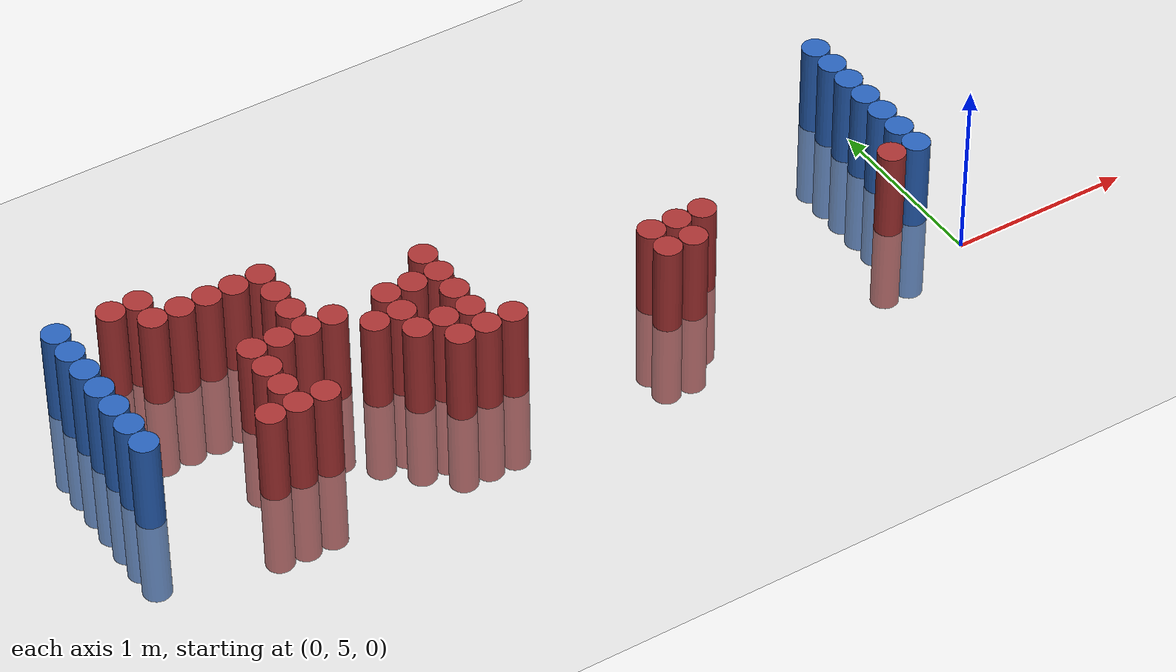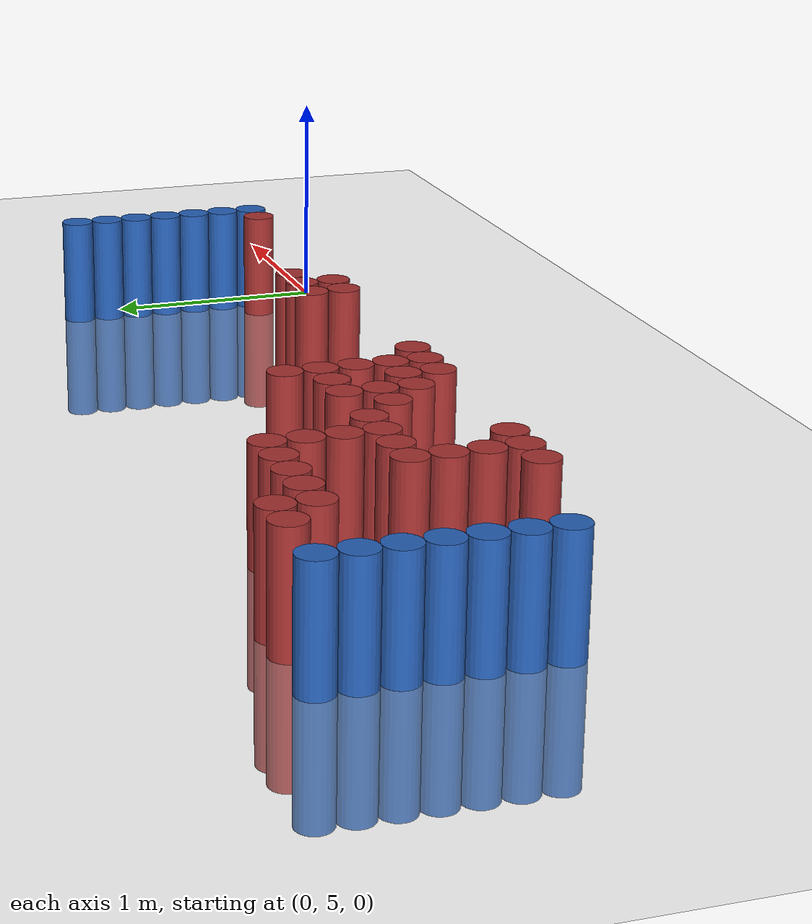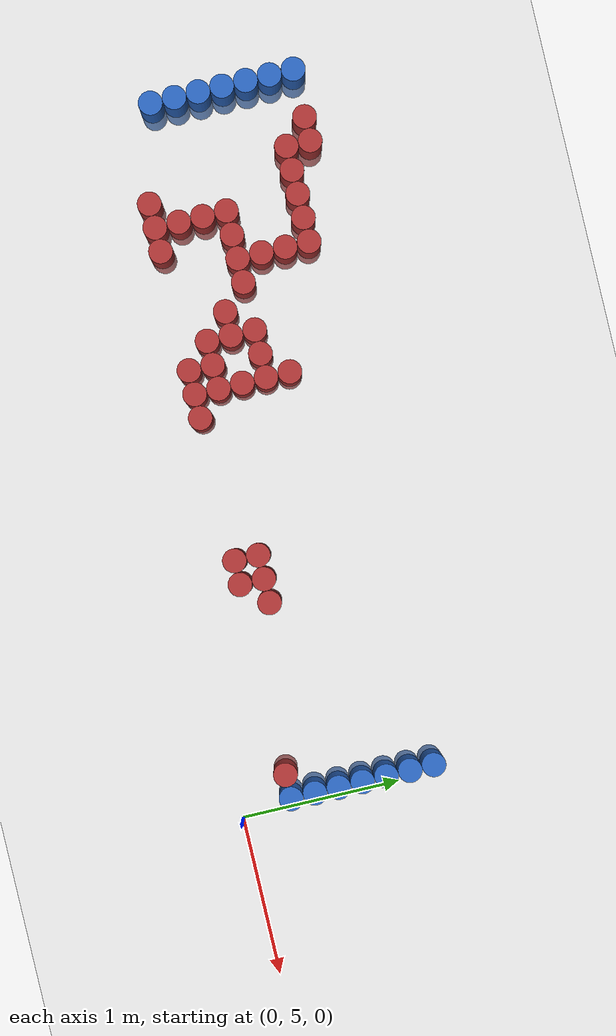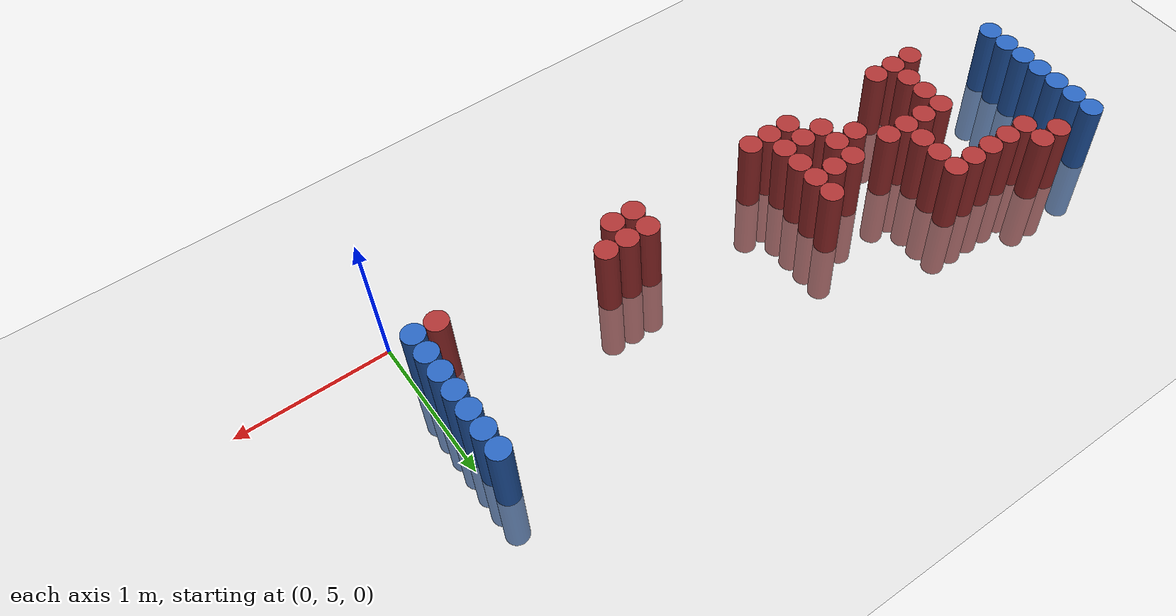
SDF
<sdf version="1.6">
 <world name="default">
  <model name="ground_plane">
   <static>1</static>
   <link name="link">
    <collision name="collision">
     <geometry><plane><normal>0 0 1</normal><size>100 100</size></plane></geometry>
     <surface><friction><ode><mu>100</mu><mu2>50</mu2></ode></friction></surface>
    </collision>
    <visual name="visual">
     <cast_shadows>0</cast_shadows>
     <geometry><plane><normal>0 0 1</normal><size>100 100</size></plane></geometry>
     <material>
      <script><uri>file://media/materials/scripts/gazebo.material</uri><name>Gazebo/Grey</name></script>
     </material>
    </visual>
   </link>
  </model>
  <model name="unit_cylinder_98">
   <static>1</static>
   <pose>-4.425000 5.475000 0.000000 0.000000 0.000000 0.000000</pose>
   <link name="link">
    <inertial>
     <mass>1</mass>
     <inertia><ixx>0.145833</ixx><ixy>0</ixy><ixz>0</ixz><iyy>0.145833</iyy><iyz>0</iyz><izz>0.125</izz></inertia>
    </inertial>
    <collision name="collision">
     <geometry><cylinder><radius>0.075000</radius><length>1</length></cylinder></geometry>
    </collision>
    <visual name="visual">
     <geometry><cylinder><radius>0.075000</radius><length>1</length></cylinder></geometry>
     <material>
      <ambient>0.152000 0.379000 0.720000 1</ambient>
      <diffuse>0.152000 0.379000 0.720000 1</diffuse>
     </material>
     <material>
      <script><name>Gazebo/Grey</name><uri>file://media/materials/scripts/gazebo.material</uri></script>
     </material>
    </visual>
   </link>
  </model>
  <model name="unit_cylinder_99">
   <static>1</static>
   <pose>-4.425000 5.625000 0.000000 0.000000 0.000000 0.000000</pose>
   <link name="link">
    <inertial>
     <mass>1</mass>
     <inertia><ixx>0.145833</ixx><ixy>0</ixy><ixz>0</ixz><iyy>0.145833</iyy><iyz>0</iyz><izz>0.125</izz></inertia>
    </inertial>
    <collision name="collision">
     <geometry><cylinder><radius>0.075000</radius><length>1</length></cylinder></geometry>
    </collision>
    <visual name="visual">
     <geometry><cylinder><radius>0.075000</radius><length>1</length></cylinder></geometry>
     <material>
      <ambient>0.152000 0.379000 0.720000 1</ambient>
      <diffuse>0.152000 0.379000 0.720000 1</diffuse>
     </material>
     <material>
      <script><name>Gazebo/Grey</name><uri>file://media/materials/scripts/gazebo.material</uri></script>
     </material>
    </visual>
   </link>
  </model>
  <model name="unit_cylinder_100">
   <static>1</static>
   <pose>-4.425000 5.775000 0.000000 0.000000 0.000000 0.000000</pose>
   <link name="link">
    <inertial>
     <mass>1</mass>
     <inertia><ixx>0.145833</ixx><ixy>0</ixy><ixz>0</ixz><iyy>0.145833</iyy><iyz>0</iyz><izz>0.125</izz></inertia>
    </inertial>
    <collision name="collision">
     <geometry><cylinder><radius>0.075000</radius><length>1</length></cylinder></geometry>
    </collision>
    <visual name="visual">
     <geometry><cylinder><radius>0.075000</radius><length>1</length></cylinder></geometry>
     <material>
      <ambient>0.152000 0.379000 0.720000 1</ambient>
      <diffuse>0.152000 0.379000 0.720000 1</diffuse>
     </material>
     <material>
      <script><name>Gazebo/Grey</name><uri>file://media/materials/scripts/gazebo.material</uri></script>
     </material>
    </visual>
   </link>
  </model>
  <model name="unit_cylinder_101">
   <static>1</static>
   <pose>-4.425000 5.925000 0.000000 0.000000 0.000000 0.000000</pose>
   <link name="link">
    <inertial>
     <mass>1</mass>
     <inertia><ixx>0.145833</ixx><ixy>0</ixy><ixz>0</ixz><iyy>0.145833</iyy><iyz>0</iyz><izz>0.125</izz></inertia>
    </inertial>
    <collision name="collision">
     <geometry><cylinder><radius>0.075000</radius><length>1</length></cylinder></geometry>
    </collision>
    <visual name="visual">
     <geometry><cylinder><radius>0.075000</radius><length>1</length></cylinder></geometry>
     <material>
      <ambient>0.152000 0.379000 0.720000 1</ambient>
      <diffuse>0.152000 0.379000 0.720000 1</diffuse>
     </material>
     <material>
      <script><name>Gazebo/Grey</name><uri>file://media/materials/scripts/gazebo.material</uri></script>
     </material>
    </visual>
   </link>
  </model>
  <model name="unit_cylinder_102">
   <static>1</static>
   <pose>-4.425000 6.075000 0.000000 0.000000 0.000000 0.000000</pose>
   <link name="link">
    <inertial>
     <mass>1</mass>
     <inertia><ixx>0.145833</ixx><ixy>0</ixy><ixz>0</ixz><iyy>0.145833</iyy><iyz>0</iyz><izz>0.125</izz></inertia>
    </inertial>
    <collision name="collision">
     <geometry><cylinder><radius>0.075000</radius><length>1</length></cylinder></geometry>
    </collision>
    <visual name="visual">
     <geometry><cylinder><radius>0.075000</radius><length>1</length></cylinder></geometry>
     <material>
      <ambient>0.152000 0.379000 0.720000 1</ambient>
      <diffuse>0.152000 0.379000 0.720000 1</diffuse>
     </material>
     <material>
      <script><name>Gazebo/Grey</name><uri>file://media/materials/scripts/gazebo.material</uri></script>
     </material>
    </visual>
   </link>
  </model>
  <model name="unit_cylinder_103">
   <static>1</static>
   <pose>-4.425000 6.225000 0.000000 0.000000 0.000000 0.000000</pose>
   <link name="link">
    <inertial>
     <mass>1</mass>
     <inertia><ixx>0.145833</ixx><ixy>0</ixy><ixz>0</ixz><iyy>0.145833</iyy><iyz>0</iyz><izz>0.125</izz></inertia>
    </inertial>
    <collision name="collision">
     <geometry><cylinder><radius>0.075000</radius><length>1</length></cylinder></geometry>
    </collision>
    <visual name="visual">
     <geometry><cylinder><radius>0.075000</radius><length>1</length></cylinder></geometry>
     <material>
      <ambient>0.152000 0.379000 0.720000 1</ambient>
      <diffuse>0.152000 0.379000 0.720000 1</diffuse>
     </material>
     <material>
      <script><name>Gazebo/Grey</name><uri>file://media/materials/scripts/gazebo.material</uri></script>
     </material>
    </visual>
   </link>
  </model>
  <model name="unit_cylinder_104">
   <static>1</static>
   <pose>-4.425000 6.375000 0.000000 0.000000 0.000000 0.000000</pose>
   <link name="link">
    <inertial>
     <mass>1</mass>
     <inertia><ixx>0.145833</ixx><ixy>0</ixy><ixz>0</ixz><iyy>0.145833</iyy><iyz>0</iyz><izz>0.125</izz></inertia>
    </inertial>
    <collision name="collision">
     <geometry><cylinder><radius>0.075000</radius><length>1</length></cylinder></geometry>
    </collision>
    <visual name="visual">
     <geometry><cylinder><radius>0.075000</radius><length>1</length></cylinder></geometry>
     <material>
      <ambient>0.152000 0.379000 0.720000 1</ambient>
      <diffuse>0.152000 0.379000 0.720000 1</diffuse>
     </material>
     <material>
      <script><name>Gazebo/Grey</name><uri>file://media/materials/scripts/gazebo.material</uri></script>
     </material>
    </visual>
   </link>
  </model>
  <model name="unit_cylinder_136">
   <static>1</static>
   <pose>-4.125000 6.375000 0.000000 0.000000 0.000000 0.000000</pose>
   <link name="link">
    <inertial>
     <mass>1</mass>
     <inertia><ixx>0.145833</ixx><ixy>0</ixy><ixz>0</ixz><iyy>0.145833</iyy><iyz>0</iyz><izz>0.125</izz></inertia>
    </inertial>
    <collision name="collision">
     <geometry><cylinder><radius>0.075000</radius><length>1</length></cylinder></geometry>
    </collision>
    <visual name="visual">
     <geometry><cylinder><radius>0.075000</radius><length>1</length></cylinder></geometry>
     <material>
      <ambient>0.648000 0.192000 0.192000 1</ambient>
      <diffuse>0.648000 0.192000 0.192000 1</diffuse>
     </material>
     <material>
      <script><name>Gazebo/Grey</name><uri>file://media/materials/scripts/gazebo.material</uri></script>
     </material>
    </visual>
   </link>
  </model>
  <model name="unit_cylinder_148">
   <static>1</static>
   <pose>-3.975000 6.225000 0.000000 0.000000 0.000000 0.000000</pose>
   <link name="link">
    <inertial>
     <mass>1</mass>
     <inertia><ixx>0.145833</ixx><ixy>0</ixy><ixz>0</ixz><iyy>0.145833</iyy><iyz>0</iyz><izz>0.125</izz></inertia>
    </inertial>
    <collision name="collision">
     <geometry><cylinder><radius>0.075000</radius><length>1</length></cylinder></geometry>
    </collision>
    <visual name="visual">
     <geometry><cylinder><radius>0.075000</radius><length>1</length></cylinder></geometry>
     <material>
      <ambient>0.648000 0.192000 0.192000 1</ambient>
      <diffuse>0.648000 0.192000 0.192000 1</diffuse>
     </material>
     <material>
      <script><name>Gazebo/Grey</name><uri>file://media/materials/scripts/gazebo.material</uri></script>
     </material>
    </visual>
   </link>
  </model>
  <model name="unit_cylinder_149">
   <static>1</static>
   <pose>-3.975000 6.375000 0.000000 0.000000 0.000000 0.000000</pose>
   <link name="link">
    <inertial>
     <mass>1</mass>
     <inertia><ixx>0.145833</ixx><ixy>0</ixy><ixz>0</ixz><iyy>0.145833</iyy><iyz>0</iyz><izz>0.125</izz></inertia>
    </inertial>
    <collision name="collision">
     <geometry><cylinder><radius>0.075000</radius><length>1</length></cylinder></geometry>
    </collision>
    <visual name="visual">
     <geometry><cylinder><radius>0.075000</radius><length>1</length></cylinder></geometry>
     <material>
      <ambient>0.648000 0.192000 0.192000 1</ambient>
      <diffuse>0.648000 0.192000 0.192000 1</diffuse>
     </material>
     <material>
      <script><name>Gazebo/Grey</name><uri>file://media/materials/scripts/gazebo.material</uri></script>
     </material>
    </visual>
   </link>
  </model>
  <model name="unit_cylinder_153">
   <static>1</static>
   <pose>-3.825000 5.325000 0.000000 0.000000 0.000000 0.000000</pose>
   <link name="link">
    <inertial>
     <mass>1</mass>
     <inertia><ixx>0.145833</ixx><ixy>0</ixy><ixz>0</ixz><iyy>0.145833</iyy><iyz>0</iyz><izz>0.125</izz></inertia>
    </inertial>
    <collision name="collision">
     <geometry><cylinder><radius>0.075000</radius><length>1</length></cylinder></geometry>
    </collision>
    <visual name="visual">
     <geometry><cylinder><radius>0.075000</radius><length>1</length></cylinder></geometry>
     <material>
      <ambient>0.648000 0.192000 0.192000 1</ambient>
      <diffuse>0.648000 0.192000 0.192000 1</diffuse>
     </material>
     <material>
      <script><name>Gazebo/Grey</name><uri>file://media/materials/scripts/gazebo.material</uri></script>
     </material>
    </visual>
   </link>
  </model>
  <model name="unit_cylinder_154">
   <static>1</static>
   <pose>-3.825000 6.225000 0.000000 0.000000 0.000000 0.000000</pose>
   <link name="link">
    <inertial>
     <mass>1</mass>
     <inertia><ixx>0.145833</ixx><ixy>0</ixy><ixz>0</ixz><iyy>0.145833</iyy><iyz>0</iyz><izz>0.125</izz></inertia>
    </inertial>
    <collision name="collision">
     <geometry><cylinder><radius>0.075000</radius><length>1</length></cylinder></geometry>
    </collision>
    <visual name="visual">
     <geometry><cylinder><radius>0.075000</radius><length>1</length></cylinder></geometry>
     <material>
      <ambient>0.648000 0.192000 0.192000 1</ambient>
      <diffuse>0.648000 0.192000 0.192000 1</diffuse>
     </material>
     <material>
      <script><name>Gazebo/Grey</name><uri>file://media/materials/scripts/gazebo.material</uri></script>
     </material>
    </visual>
   </link>
  </model>
  <model name="unit_cylinder_160">
   <static>1</static>
   <pose>-3.675000 5.325000 0.000000 0.000000 0.000000 0.000000</pose>
   <link name="link">
    <inertial>
     <mass>1</mass>
     <inertia><ixx>0.145833</ixx><ixy>0</ixy><ixz>0</ixz><iyy>0.145833</iyy><iyz>0</iyz><izz>0.125</izz></inertia>
    </inertial>
    <collision name="collision">
     <geometry><cylinder><radius>0.075000</radius><length>1</length></cylinder></geometry>
    </collision>
    <visual name="visual">
     <geometry><cylinder><radius>0.075000</radius><length>1</length></cylinder></geometry>
     <material>
      <ambient>0.648000 0.192000 0.192000 1</ambient>
      <diffuse>0.648000 0.192000 0.192000 1</diffuse>
     </material>
     <material>
      <script><name>Gazebo/Grey</name><uri>file://media/materials/scripts/gazebo.material</uri></script>
     </material>
    </visual>
   </link>
  </model>
  <model name="unit_cylinder_161">
   <static>1</static>
   <pose>-3.675000 5.475000 0.000000 0.000000 0.000000 0.000000</pose>
   <link name="link">
    <inertial>
     <mass>1</mass>
     <inertia><ixx>0.145833</ixx><ixy>0</ixy><ixz>0</ixz><iyy>0.145833</iyy><iyz>0</iyz><izz>0.125</izz></inertia>
    </inertial>
    <collision name="collision">
     <geometry><cylinder><radius>0.075000</radius><length>1</length></cylinder></geometry>
    </collision>
    <visual name="visual">
     <geometry><cylinder><radius>0.075000</radius><length>1</length></cylinder></geometry>
     <material>
      <ambient>0.648000 0.192000 0.192000 1</ambient>
      <diffuse>0.648000 0.192000 0.192000 1</diffuse>
     </material>
     <material>
      <script><name>Gazebo/Grey</name><uri>file://media/materials/scripts/gazebo.material</uri></script>
     </material>
    </visual>
   </link>
  </model>
  <model name="unit_cylinder_162">
   <static>1</static>
   <pose>-3.675000 5.625000 0.000000 0.000000 0.000000 0.000000</pose>
   <link name="link">
    <inertial>
     <mass>1</mass>
     <inertia><ixx>0.145833</ixx><ixy>0</ixy><ixz>0</ixz><iyy>0.145833</iyy><iyz>0</iyz><izz>0.125</izz></inertia>
    </inertial>
    <collision name="collision">
     <geometry><cylinder><radius>0.075000</radius><length>1</length></cylinder></geometry>
    </collision>
    <visual name="visual">
     <geometry><cylinder><radius>0.075000</radius><length>1</length></cylinder></geometry>
     <material>
      <ambient>0.648000 0.192000 0.192000 1</ambient>
      <diffuse>0.648000 0.192000 0.192000 1</diffuse>
     </material>
     <material>
      <script><name>Gazebo/Grey</name><uri>file://media/materials/scripts/gazebo.material</uri></script>
     </material>
    </visual>
   </link>
  </model>
  <model name="unit_cylinder_163">
   <static>1</static>
   <pose>-3.675000 5.775000 0.000000 0.000000 0.000000 0.000000</pose>
   <link name="link">
    <inertial>
     <mass>1</mass>
     <inertia><ixx>0.145833</ixx><ixy>0</ixy><ixz>0</ixz><iyy>0.145833</iyy><iyz>0</iyz><izz>0.125</izz></inertia>
    </inertial>
    <collision name="collision">
     <geometry><cylinder><radius>0.075000</radius><length>1</length></cylinder></geometry>
    </collision>
    <visual name="visual">
     <geometry><cylinder><radius>0.075000</radius><length>1</length></cylinder></geometry>
     <material>
      <ambient>0.648000 0.192000 0.192000 1</ambient>
      <diffuse>0.648000 0.192000 0.192000 1</diffuse>
     </material>
     <material>
      <script><name>Gazebo/Grey</name><uri>file://media/materials/scripts/gazebo.material</uri></script>
     </material>
    </visual>
   </link>
  </model>
  <model name="unit_cylinder_164">
   <static>1</static>
   <pose>-3.675000 6.225000 0.000000 0.000000 0.000000 0.000000</pose>
   <link name="link">
    <inertial>
     <mass>1</mass>
     <inertia><ixx>0.145833</ixx><ixy>0</ixy><ixz>0</ixz><iyy>0.145833</iyy><iyz>0</iyz><izz>0.125</izz></inertia>
    </inertial>
    <collision name="collision">
     <geometry><cylinder><radius>0.075000</radius><length>1</length></cylinder></geometry>
    </collision>
    <visual name="visual">
     <geometry><cylinder><radius>0.075000</radius><length>1</length></cylinder></geometry>
     <material>
      <ambient>0.648000 0.192000 0.192000 1</ambient>
      <diffuse>0.648000 0.192000 0.192000 1</diffuse>
     </material>
     <material>
      <script><name>Gazebo/Grey</name><uri>file://media/materials/scripts/gazebo.material</uri></script>
     </material>
    </visual>
   </link>
  </model>
  <model name="unit_cylinder_169">
   <static>1</static>
   <pose>-3.525000 5.325000 0.000000 0.000000 0.000000 0.000000</pose>
   <link name="link">
    <inertial>
     <mass>1</mass>
     <inertia><ixx>0.145833</ixx><ixy>0</ixy><ixz>0</ixz><iyy>0.145833</iyy><iyz>0</iyz><izz>0.125</izz></inertia>
    </inertial>
    <collision name="collision">
     <geometry><cylinder><radius>0.075000</radius><length>1</length></cylinder></geometry>
    </collision>
    <visual name="visual">
     <geometry><cylinder><radius>0.075000</radius><length>1</length></cylinder></geometry>
     <material>
      <ambient>0.648000 0.192000 0.192000 1</ambient>
      <diffuse>0.648000 0.192000 0.192000 1</diffuse>
     </material>
     <material>
      <script><name>Gazebo/Grey</name><uri>file://media/materials/scripts/gazebo.material</uri></script>
     </material>
    </visual>
   </link>
  </model>
  <model name="unit_cylinder_170">
   <static>1</static>
   <pose>-3.525000 5.775000 0.000000 0.000000 0.000000 0.000000</pose>
   <link name="link">
    <inertial>
     <mass>1</mass>
     <inertia><ixx>0.145833</ixx><ixy>0</ixy><ixz>0</ixz><iyy>0.145833</iyy><iyz>0</iyz><izz>0.125</izz></inertia>
    </inertial>
    <collision name="collision">
     <geometry><cylinder><radius>0.075000</radius><length>1</length></cylinder></geometry>
    </collision>
    <visual name="visual">
     <geometry><cylinder><radius>0.075000</radius><length>1</length></cylinder></geometry>
     <material>
      <ambient>0.648000 0.192000 0.192000 1</ambient>
      <diffuse>0.648000 0.192000 0.192000 1</diffuse>
     </material>
     <material>
      <script><name>Gazebo/Grey</name><uri>file://media/materials/scripts/gazebo.material</uri></script>
     </material>
    </visual>
   </link>
  </model>
  <model name="unit_cylinder_171">
   <static>1</static>
   <pose>-3.525000 6.225000 0.000000 0.000000 0.000000 0.000000</pose>
   <link name="link">
    <inertial>
     <mass>1</mass>
     <inertia><ixx>0.145833</ixx><ixy>0</ixy><ixz>0</ixz><iyy>0.145833</iyy><iyz>0</iyz><izz>0.125</izz></inertia>
    </inertial>
    <collision name="collision">
     <geometry><cylinder><radius>0.075000</radius><length>1</length></cylinder></geometry>
    </collision>
    <visual name="visual">
     <geometry><cylinder><radius>0.075000</radius><length>1</length></cylinder></geometry>
     <material>
      <ambient>0.648000 0.192000 0.192000 1</ambient>
      <diffuse>0.648000 0.192000 0.192000 1</diffuse>
     </material>
     <material>
      <script><name>Gazebo/Grey</name><uri>file://media/materials/scripts/gazebo.material</uri></script>
     </material>
    </visual>
   </link>
  </model>
  <model name="unit_cylinder_176">
   <static>1</static>
   <pose>-3.375000 5.775000 0.000000 0.000000 0.000000 0.000000</pose>
   <link name="link">
    <inertial>
     <mass>1</mass>
     <inertia><ixx>0.145833</ixx><ixy>0</ixy><ixz>0</ixz><iyy>0.145833</iyy><iyz>0</iyz><izz>0.125</izz></inertia>
    </inertial>
    <collision name="collision">
     <geometry><cylinder><radius>0.075000</radius><length>1</length></cylinder></geometry>
    </collision>
    <visual name="visual">
     <geometry><cylinder><radius>0.075000</radius><length>1</length></cylinder></geometry>
     <material>
      <ambient>0.648000 0.192000 0.192000 1</ambient>
      <diffuse>0.648000 0.192000 0.192000 1</diffuse>
     </material>
     <material>
      <script><name>Gazebo/Grey</name><uri>file://media/materials/scripts/gazebo.material</uri></script>
     </material>
    </visual>
   </link>
  </model>
  <model name="unit_cylinder_177">
   <static>1</static>
   <pose>-3.375000 5.925000 0.000000 0.000000 0.000000 0.000000</pose>
   <link name="link">
    <inertial>
     <mass>1</mass>
     <inertia><ixx>0.145833</ixx><ixy>0</ixy><ixz>0</ixz><iyy>0.145833</iyy><iyz>0</iyz><izz>0.125</izz></inertia>
    </inertial>
    <collision name="collision">
     <geometry><cylinder><radius>0.075000</radius><length>1</length></cylinder></geometry>
    </collision>
    <visual name="visual">
     <geometry><cylinder><radius>0.075000</radius><length>1</length></cylinder></geometry>
     <material>
      <ambient>0.648000 0.192000 0.192000 1</ambient>
      <diffuse>0.648000 0.192000 0.192000 1</diffuse>
     </material>
     <material>
      <script><name>Gazebo/Grey</name><uri>file://media/materials/scripts/gazebo.material</uri></script>
     </material>
    </visual>
   </link>
  </model>
  <model name="unit_cylinder_178">
   <static>1</static>
   <pose>-3.375000 6.075000 0.000000 0.000000 0.000000 0.000000</pose>
   <link name="link">
    <inertial>
     <mass>1</mass>
     <inertia><ixx>0.145833</ixx><ixy>0</ixy><ixz>0</ixz><iyy>0.145833</iyy><iyz>0</iyz><izz>0.125</izz></inertia>
    </inertial>
    <collision name="collision">
     <geometry><cylinder><radius>0.075000</radius><length>1</length></cylinder></geometry>
    </collision>
    <visual name="visual">
     <geometry><cylinder><radius>0.075000</radius><length>1</length></cylinder></geometry>
     <material>
      <ambient>0.648000 0.192000 0.192000 1</ambient>
      <diffuse>0.648000 0.192000 0.192000 1</diffuse>
     </material>
     <material>
      <script><name>Gazebo/Grey</name><uri>file://media/materials/scripts/gazebo.material</uri></script>
     </material>
    </visual>
   </link>
  </model>
  <model name="unit_cylinder_179">
   <static>1</static>
   <pose>-3.375000 6.225000 0.000000 0.000000 0.000000 0.000000</pose>
   <link name="link">
    <inertial>
     <mass>1</mass>
     <inertia><ixx>0.145833</ixx><ixy>0</ixy><ixz>0</ixz><iyy>0.145833</iyy><iyz>0</iyz><izz>0.125</izz></inertia>
    </inertial>
    <collision name="collision">
     <geometry><cylinder><radius>0.075000</radius><length>1</length></cylinder></geometry>
    </collision>
    <visual name="visual">
     <geometry><cylinder><radius>0.075000</radius><length>1</length></cylinder></geometry>
     <material>
      <ambient>0.648000 0.192000 0.192000 1</ambient>
      <diffuse>0.648000 0.192000 0.192000 1</diffuse>
     </material>
     <material>
      <script><name>Gazebo/Grey</name><uri>file://media/materials/scripts/gazebo.material</uri></script>
     </material>
    </visual>
   </link>
  </model>
  <model name="unit_cylinder_185">
   <static>1</static>
   <pose>-3.225000 5.775000 0.000000 0.000000 0.000000 0.000000</pose>
   <link name="link">
    <inertial>
     <mass>1</mass>
     <inertia><ixx>0.145833</ixx><ixy>0</ixy><ixz>0</ixz><iyy>0.145833</iyy><iyz>0</iyz><izz>0.125</izz></inertia>
    </inertial>
    <collision name="collision">
     <geometry><cylinder><radius>0.075000</radius><length>1</length></cylinder></geometry>
    </collision>
    <visual name="visual">
     <geometry><cylinder><radius>0.075000</radius><length>1</length></cylinder></geometry>
     <material>
      <ambient>0.648000 0.192000 0.192000 1</ambient>
      <diffuse>0.648000 0.192000 0.192000 1</diffuse>
     </material>
     <material>
      <script><name>Gazebo/Grey</name><uri>file://media/materials/scripts/gazebo.material</uri></script>
     </material>
    </visual>
   </link>
  </model>
  <model name="unit_cylinder_190">
   <static>1</static>
   <pose>-3.075000 5.625000 0.000000 0.000000 0.000000 0.000000</pose>
   <link name="link">
    <inertial>
     <mass>1</mass>
     <inertia><ixx>0.145833</ixx><ixy>0</ixy><ixz>0</ixz><iyy>0.145833</iyy><iyz>0</iyz><izz>0.125</izz></inertia>
    </inertial>
    <collision name="collision">
     <geometry><cylinder><radius>0.075000</radius><length>1</length></cylinder></geometry>
    </collision>
    <visual name="visual">
     <geometry><cylinder><radius>0.075000</radius><length>1</length></cylinder></geometry>
     <material>
      <ambient>0.648000 0.192000 0.192000 1</ambient>
      <diffuse>0.648000 0.192000 0.192000 1</diffuse>
     </material>
     <material>
      <script><name>Gazebo/Grey</name><uri>file://media/materials/scripts/gazebo.material</uri></script>
     </material>
    </visual>
   </link>
  </model>
  <model name="unit_cylinder_192">
   <static>1</static>
   <pose>-2.925000 5.475000 0.000000 0.000000 0.000000 0.000000</pose>
   <link name="link">
    <inertial>
     <mass>1</mass>
     <inertia><ixx>0.145833</ixx><ixy>0</ixy><ixz>0</ixz><iyy>0.145833</iyy><iyz>0</iyz><izz>0.125</izz></inertia>
    </inertial>
    <collision name="collision">
     <geometry><cylinder><radius>0.075000</radius><length>1</length></cylinder></geometry>
    </collision>
    <visual name="visual">
     <geometry><cylinder><radius>0.075000</radius><length>1</length></cylinder></geometry>
     <material>
      <ambient>0.648000 0.192000 0.192000 1</ambient>
      <diffuse>0.648000 0.192000 0.192000 1</diffuse>
     </material>
     <material>
      <script><name>Gazebo/Grey</name><uri>file://media/materials/scripts/gazebo.material</uri></script>
     </material>
    </visual>
   </link>
  </model>
  <model name="unit_cylinder_193">
   <static>1</static>
   <pose>-2.925000 5.625000 0.000000 0.000000 0.000000 0.000000</pose>
   <link name="link">
    <inertial>
     <mass>1</mass>
     <inertia><ixx>0.145833</ixx><ixy>0</ixy><ixz>0</ixz><iyy>0.145833</iyy><iyz>0</iyz><izz>0.125</izz></inertia>
    </inertial>
    <collision name="collision">
     <geometry><cylinder><radius>0.075000</radius><length>1</length></cylinder></geometry>
    </collision>
    <visual name="visual">
     <geometry><cylinder><radius>0.075000</radius><length>1</length></cylinder></geometry>
     <material>
      <ambient>0.648000 0.192000 0.192000 1</ambient>
      <diffuse>0.648000 0.192000 0.192000 1</diffuse>
     </material>
     <material>
      <script><name>Gazebo/Grey</name><uri>file://media/materials/scripts/gazebo.material</uri></script>
     </material>
    </visual>
   </link>
  </model>
  <model name="unit_cylinder_194">
   <static>1</static>
   <pose>-2.925000 5.775000 0.000000 0.000000 0.000000 0.000000</pose>
   <link name="link">
    <inertial>
     <mass>1</mass>
     <inertia><ixx>0.145833</ixx><ixy>0</ixy><ixz>0</ixz><iyy>0.145833</iyy><iyz>0</iyz><izz>0.125</izz></inertia>
    </inertial>
    <collision name="collision">
     <geometry><cylinder><radius>0.075000</radius><length>1</length></cylinder></geometry>
    </collision>
    <visual name="visual">
     <geometry><cylinder><radius>0.075000</radius><length>1</length></cylinder></geometry>
     <material>
      <ambient>0.648000 0.192000 0.192000 1</ambient>
      <diffuse>0.648000 0.192000 0.192000 1</diffuse>
     </material>
     <material>
      <script><name>Gazebo/Grey</name><uri>file://media/materials/scripts/gazebo.material</uri></script>
     </material>
    </visual>
   </link>
  </model>
  <model name="unit_cylinder_195">
   <static>1</static>
   <pose>-2.775000 5.325000 0.000000 0.000000 0.000000 0.000000</pose>
   <link name="link">
    <inertial>
     <mass>1</mass>
     <inertia><ixx>0.145833</ixx><ixy>0</ixy><ixz>0</ixz><iyy>0.145833</iyy><iyz>0</iyz><izz>0.125</izz></inertia>
    </inertial>
    <collision name="collision">
     <geometry><cylinder><radius>0.075000</radius><length>1</length></cylinder></geometry>
    </collision>
    <visual name="visual">
     <geometry><cylinder><radius>0.075000</radius><length>1</length></cylinder></geometry>
     <material>
      <ambient>0.648000 0.192000 0.192000 1</ambient>
      <diffuse>0.648000 0.192000 0.192000 1</diffuse>
     </material>
     <material>
      <script><name>Gazebo/Grey</name><uri>file://media/materials/scripts/gazebo.material</uri></script>
     </material>
    </visual>
   </link>
  </model>
  <model name="unit_cylinder_196">
   <static>1</static>
   <pose>-2.775000 5.475000 0.000000 0.000000 0.000000 0.000000</pose>
   <link name="link">
    <inertial>
     <mass>1</mass>
     <inertia><ixx>0.145833</ixx><ixy>0</ixy><ixz>0</ixz><iyy>0.145833</iyy><iyz>0</iyz><izz>0.125</izz></inertia>
    </inertial>
    <collision name="collision">
     <geometry><cylinder><radius>0.075000</radius><length>1</length></cylinder></geometry>
    </collision>
    <visual name="visual">
     <geometry><cylinder><radius>0.075000</radius><length>1</length></cylinder></geometry>
     <material>
      <ambient>0.648000 0.192000 0.192000 1</ambient>
      <diffuse>0.648000 0.192000 0.192000 1</diffuse>
     </material>
     <material>
      <script><name>Gazebo/Grey</name><uri>file://media/materials/scripts/gazebo.material</uri></script>
     </material>
    </visual>
   </link>
  </model>
  <model name="unit_cylinder_197">
   <static>1</static>
   <pose>-2.775000 5.775000 0.000000 0.000000 0.000000 0.000000</pose>
   <link name="link">
    <inertial>
     <mass>1</mass>
     <inertia><ixx>0.145833</ixx><ixy>0</ixy><ixz>0</ixz><iyy>0.145833</iyy><iyz>0</iyz><izz>0.125</izz></inertia>
    </inertial>
    <collision name="collision">
     <geometry><cylinder><radius>0.075000</radius><length>1</length></cylinder></geometry>
    </collision>
    <visual name="visual">
     <geometry><cylinder><radius>0.075000</radius><length>1</length></cylinder></geometry>
     <material>
      <ambient>0.648000 0.192000 0.192000 1</ambient>
      <diffuse>0.648000 0.192000 0.192000 1</diffuse>
     </material>
     <material>
      <script><name>Gazebo/Grey</name><uri>file://media/materials/scripts/gazebo.material</uri></script>
     </material>
    </visual>
   </link>
  </model>
  <model name="unit_cylinder_198">
   <static>1</static>
   <pose>-2.625000 5.325000 0.000000 0.000000 0.000000 0.000000</pose>
   <link name="link">
    <inertial>
     <mass>1</mass>
     <inertia><ixx>0.145833</ixx><ixy>0</ixy><ixz>0</ixz><iyy>0.145833</iyy><iyz>0</iyz><izz>0.125</izz></inertia>
    </inertial>
    <collision name="collision">
     <geometry><cylinder><radius>0.075000</radius><length>1</length></cylinder></geometry>
    </collision>
    <visual name="visual">
     <geometry><cylinder><radius>0.075000</radius><length>1</length></cylinder></geometry>
     <material>
      <ambient>0.648000 0.192000 0.192000 1</ambient>
      <diffuse>0.648000 0.192000 0.192000 1</diffuse>
     </material>
     <material>
      <script><name>Gazebo/Grey</name><uri>file://media/materials/scripts/gazebo.material</uri></script>
     </material>
    </visual>
   </link>
  </model>
  <model name="unit_cylinder_199">
   <static>1</static>
   <pose>-2.625000 5.475000 0.000000 0.000000 0.000000 0.000000</pose>
   <link name="link">
    <inertial>
     <mass>1</mass>
     <inertia><ixx>0.145833</ixx><ixy>0</ixy><ixz>0</ixz><iyy>0.145833</iyy><iyz>0</iyz><izz>0.125</izz></inertia>
    </inertial>
    <collision name="collision">
     <geometry><cylinder><radius>0.075000</radius><length>1</length></cylinder></geometry>
    </collision>
    <visual name="visual">
     <geometry><cylinder><radius>0.075000</radius><length>1</length></cylinder></geometry>
     <material>
      <ambient>0.648000 0.192000 0.192000 1</ambient>
      <diffuse>0.648000 0.192000 0.192000 1</diffuse>
     </material>
     <material>
      <script><name>Gazebo/Grey</name><uri>file://media/materials/scripts/gazebo.material</uri></script>
     </material>
    </visual>
   </link>
  </model>
  <model name="unit_cylinder_200">
   <static>1</static>
   <pose>-2.625000 5.625000 0.000000 0.000000 0.000000 0.000000</pose>
   <link name="link">
    <inertial>
     <mass>1</mass>
     <inertia><ixx>0.145833</ixx><ixy>0</ixy><ixz>0</ixz><iyy>0.145833</iyy><iyz>0</iyz><izz>0.125</izz></inertia>
    </inertial>
    <collision name="collision">
     <geometry><cylinder><radius>0.075000</radius><length>1</length></cylinder></geometry>
    </collision>
    <visual name="visual">
     <geometry><cylinder><radius>0.075000</radius><length>1</length></cylinder></geometry>
     <material>
      <ambient>0.648000 0.192000 0.192000 1</ambient>
      <diffuse>0.648000 0.192000 0.192000 1</diffuse>
     </material>
     <material>
      <script><name>Gazebo/Grey</name><uri>file://media/materials/scripts/gazebo.material</uri></script>
     </material>
    </visual>
   </link>
  </model>
  <model name="unit_cylinder_201">
   <static>1</static>
   <pose>-2.625000 5.775000 0.000000 0.000000 0.000000 0.000000</pose>
   <link name="link">
    <inertial>
     <mass>1</mass>
     <inertia><ixx>0.145833</ixx><ixy>0</ixy><ixz>0</ixz><iyy>0.145833</iyy><iyz>0</iyz><izz>0.125</izz></inertia>
    </inertial>
    <collision name="collision">
     <geometry><cylinder><radius>0.075000</radius><length>1</length></cylinder></geometry>
    </collision>
    <visual name="visual">
     <geometry><cylinder><radius>0.075000</radius><length>1</length></cylinder></geometry>
     <material>
      <ambient>0.648000 0.192000 0.192000 1</ambient>
      <diffuse>0.648000 0.192000 0.192000 1</diffuse>
     </material>
     <material>
      <script><name>Gazebo/Grey</name><uri>file://media/materials/scripts/gazebo.material</uri></script>
     </material>
    </visual>
   </link>
  </model>
  <model name="unit_cylinder_202">
   <static>1</static>
   <pose>-2.625000 5.925000 0.000000 0.000000 0.000000 0.000000</pose>
   <link name="link">
    <inertial>
     <mass>1</mass>
     <inertia><ixx>0.145833</ixx><ixy>0</ixy><ixz>0</ixz><iyy>0.145833</iyy><iyz>0</iyz><izz>0.125</izz></inertia>
    </inertial>
    <collision name="collision">
     <geometry><cylinder><radius>0.075000</radius><length>1</length></cylinder></geometry>
    </collision>
    <visual name="visual">
     <geometry><cylinder><radius>0.075000</radius><length>1</length></cylinder></geometry>
     <material>
      <ambient>0.648000 0.192000 0.192000 1</ambient>
      <diffuse>0.648000 0.192000 0.192000 1</diffuse>
     </material>
     <material>
      <script><name>Gazebo/Grey</name><uri>file://media/materials/scripts/gazebo.material</uri></script>
     </material>
    </visual>
   </link>
  </model>
  <model name="unit_cylinder_203">
   <static>1</static>
   <pose>-2.475000 5.325000 0.000000 0.000000 0.000000 0.000000</pose>
   <link name="link">
    <inertial>
     <mass>1</mass>
     <inertia><ixx>0.145833</ixx><ixy>0</ixy><ixz>0</ixz><iyy>0.145833</iyy><iyz>0</iyz><izz>0.125</izz></inertia>
    </inertial>
    <collision name="collision">
     <geometry><cylinder><radius>0.075000</radius><length>1</length></cylinder></geometry>
    </collision>
    <visual name="visual">
     <geometry><cylinder><radius>0.075000</radius><length>1</length></cylinder></geometry>
     <material>
      <ambient>0.648000 0.192000 0.192000 1</ambient>
      <diffuse>0.648000 0.192000 0.192000 1</diffuse>
     </material>
     <material>
      <script><name>Gazebo/Grey</name><uri>file://media/materials/scripts/gazebo.material</uri></script>
     </material>
    </visual>
   </link>
  </model>
  <model name="unit_cylinder_210">
   <static>1</static>
   <pose>-1.575000 5.325000 0.000000 0.000000 0.000000 0.000000</pose>
   <link name="link">
    <inertial>
     <mass>1</mass>
     <inertia><ixx>0.145833</ixx><ixy>0</ixy><ixz>0</ixz><iyy>0.145833</iyy><iyz>0</iyz><izz>0.125</izz></inertia>
    </inertial>
    <collision name="collision">
     <geometry><cylinder><radius>0.075000</radius><length>1</length></cylinder></geometry>
    </collision>
    <visual name="visual">
     <geometry><cylinder><radius>0.075000</radius><length>1</length></cylinder></geometry>
     <material>
      <ambient>0.648000 0.192000 0.192000 1</ambient>
      <diffuse>0.648000 0.192000 0.192000 1</diffuse>
     </material>
     <material>
      <script><name>Gazebo/Grey</name><uri>file://media/materials/scripts/gazebo.material</uri></script>
     </material>
    </visual>
   </link>
  </model>
  <model name="unit_cylinder_211">
   <static>1</static>
   <pose>-1.575000 5.475000 0.000000 0.000000 0.000000 0.000000</pose>
   <link name="link">
    <inertial>
     <mass>1</mass>
     <inertia><ixx>0.145833</ixx><ixy>0</ixy><ixz>0</ixz><iyy>0.145833</iyy><iyz>0</iyz><izz>0.125</izz></inertia>
    </inertial>
    <collision name="collision">
     <geometry><cylinder><radius>0.075000</radius><length>1</length></cylinder></geometry>
    </collision>
    <visual name="visual">
     <geometry><cylinder><radius>0.075000</radius><length>1</length></cylinder></geometry>
     <material>
      <ambient>0.648000 0.192000 0.192000 1</ambient>
      <diffuse>0.648000 0.192000 0.192000 1</diffuse>
     </material>
     <material>
      <script><name>Gazebo/Grey</name><uri>file://media/materials/scripts/gazebo.material</uri></script>
     </material>
    </visual>
   </link>
  </model>
  <model name="unit_cylinder_214">
   <static>1</static>
   <pose>-1.425000 5.325000 0.000000 0.000000 0.000000 0.000000</pose>
   <link name="link">
    <inertial>
     <mass>1</mass>
     <inertia><ixx>0.145833</ixx><ixy>0</ixy><ixz>0</ixz><iyy>0.145833</iyy><iyz>0</iyz><izz>0.125</izz></inertia>
    </inertial>
    <collision name="collision">
     <geometry><cylinder><radius>0.075000</radius><length>1</length></cylinder></geometry>
    </collision>
    <visual name="visual">
     <geometry><cylinder><radius>0.075000</radius><length>1</length></cylinder></geometry>
     <material>
      <ambient>0.648000 0.192000 0.192000 1</ambient>
      <diffuse>0.648000 0.192000 0.192000 1</diffuse>
     </material>
     <material>
      <script><name>Gazebo/Grey</name><uri>file://media/materials/scripts/gazebo.material</uri></script>
     </material>
    </visual>
   </link>
  </model>
  <model name="unit_cylinder_215">
   <static>1</static>
   <pose>-1.425000 5.475000 0.000000 0.000000 0.000000 0.000000</pose>
   <link name="link">
    <inertial>
     <mass>1</mass>
     <inertia><ixx>0.145833</ixx><ixy>0</ixy><ixz>0</ixz><iyy>0.145833</iyy><iyz>0</iyz><izz>0.125</izz></inertia>
    </inertial>
    <collision name="collision">
     <geometry><cylinder><radius>0.075000</radius><length>1</length></cylinder></geometry>
    </collision>
    <visual name="visual">
     <geometry><cylinder><radius>0.075000</radius><length>1</length></cylinder></geometry>
     <material>
      <ambient>0.648000 0.192000 0.192000 1</ambient>
      <diffuse>0.648000 0.192000 0.192000 1</diffuse>
     </material>
     <material>
      <script><name>Gazebo/Grey</name><uri>file://media/materials/scripts/gazebo.material</uri></script>
     </material>
    </visual>
   </link>
  </model>
  <model name="unit_cylinder_223">
   <static>1</static>
   <pose>-1.275000 5.475000 0.000000 0.000000 0.000000 0.000000</pose>
   <link name="link">
    <inertial>
     <mass>1</mass>
     <inertia><ixx>0.145833</ixx><ixy>0</ixy><ixz>0</ixz><iyy>0.145833</iyy><iyz>0</iyz><izz>0.125</izz></inertia>
    </inertial>
    <collision name="collision">
     <geometry><cylinder><radius>0.075000</radius><length>1</length></cylinder></geometry>
    </collision>
    <visual name="visual">
     <geometry><cylinder><radius>0.075000</radius><length>1</length></cylinder></geometry>
     <material>
      <ambient>0.648000 0.192000 0.192000 1</ambient>
      <diffuse>0.648000 0.192000 0.192000 1</diffuse>
     </material>
     <material>
      <script><name>Gazebo/Grey</name><uri>file://media/materials/scripts/gazebo.material</uri></script>
     </material>
    </visual>
   </link>
  </model>
  <model name="unit_cylinder_260">
   <static>1</static>
   <pose>-0.225000 5.325000 0.000000 0.000000 0.000000 0.000000</pose>
   <link name="link">
    <inertial>
     <mass>1</mass>
     <inertia><ixx>0.145833</ixx><ixy>0</ixy><ixz>0</ixz><iyy>0.145833</iyy><iyz>0</iyz><izz>0.125</izz></inertia>
    </inertial>
    <collision name="collision">
     <geometry><cylinder><radius>0.075000</radius><length>1</length></cylinder></geometry>
    </collision>
    <visual name="visual">
     <geometry><cylinder><radius>0.075000</radius><length>1</length></cylinder></geometry>
     <material>
      <ambient>0.648000 0.192000 0.192000 1</ambient>
      <diffuse>0.648000 0.192000 0.192000 1</diffuse>
     </material>
     <material>
      <script><name>Gazebo/Grey</name><uri>file://media/materials/scripts/gazebo.material</uri></script>
     </material>
    </visual>
   </link>
  </model>
  <model name="unit_cylinder_279">
   <static>1</static>
   <pose>-0.075000 5.325000 0.000000 0.000000 0.000000 0.000000</pose>
   <link name="link">
    <inertial>
     <mass>1</mass>
     <inertia><ixx>0.145833</ixx><ixy>0</ixy><ixz>0</ixz><iyy>0.145833</iyy><iyz>0</iyz><izz>0.125</izz></inertia>
    </inertial>
    <collision name="collision">
     <geometry><cylinder><radius>0.075000</radius><length>1</length></cylinder></geometry>
    </collision>
    <visual name="visual">
     <geometry><cylinder><radius>0.075000</radius><length>1</length></cylinder></geometry>
     <material>
      <ambient>0.152000 0.379000 0.720000 1</ambient>
      <diffuse>0.152000 0.379000 0.720000 1</diffuse>
     </material>
     <material>
      <script><name>Gazebo/Grey</name><uri>file://media/materials/scripts/gazebo.material</uri></script>
     </material>
    </visual>
   </link>
  </model>
  <model name="unit_cylinder_280">
   <static>1</static>
   <pose>-0.075000 5.475000 0.000000 0.000000 0.000000 0.000000</pose>
   <link name="link">
    <inertial>
     <mass>1</mass>
     <inertia><ixx>0.145833</ixx><ixy>0</ixy><ixz>0</ixz><iyy>0.145833</iyy><iyz>0</iyz><izz>0.125</izz></inertia>
    </inertial>
    <collision name="collision">
     <geometry><cylinder><radius>0.075000</radius><length>1</length></cylinder></geometry>
    </collision>
    <visual name="visual">
     <geometry><cylinder><radius>0.075000</radius><length>1</length></cylinder></geometry>
     <material>
      <ambient>0.152000 0.379000 0.720000 1</ambient>
      <diffuse>0.152000 0.379000 0.720000 1</diffuse>
     </material>
     <material>
      <script><name>Gazebo/Grey</name><uri>file://media/materials/scripts/gazebo.material</uri></script>
     </material>
    </visual>
   </link>
  </model>
  <model name="unit_cylinder_281">
   <static>1</static>
   <pose>-0.075000 5.625000 0.000000 0.000000 0.000000 0.000000</pose>
   <link name="link">
    <inertial>
     <mass>1</mass>
     <inertia><ixx>0.145833</ixx><ixy>0</ixy><ixz>0</ixz><iyy>0.145833</iyy><iyz>0</iyz><izz>0.125</izz></inertia>
    </inertial>
    <collision name="collision">
     <geometry><cylinder><radius>0.075000</radius><length>1</length></cylinder></geometry>
    </collision>
    <visual name="visual">
     <geometry><cylinder><radius>0.075000</radius><length>1</length></cylinder></geometry>
     <material>
      <ambient>0.152000 0.379000 0.720000 1</ambient>
      <diffuse>0.152000 0.379000 0.720000 1</diffuse>
     </material>
     <material>
      <script><name>Gazebo/Grey</name><uri>file://media/materials/scripts/gazebo.material</uri></script>
     </material>
    </visual>
   </link>
  </model>
  <model name="unit_cylinder_282">
   <static>1</static>
   <pose>-0.075000 5.775000 0.000000 0.000000 0.000000 0.000000</pose>
   <link name="link">
    <inertial>
     <mass>1</mass>
     <inertia><ixx>0.145833</ixx><ixy>0</ixy><ixz>0</ixz><iyy>0.145833</iyy><iyz>0</iyz><izz>0.125</izz></inertia>
    </inertial>
    <collision name="collision">
     <geometry><cylinder><radius>0.075000</radius><length>1</length></cylinder></geometry>
    </collision>
    <visual name="visual">
     <geometry><cylinder><radius>0.075000</radius><length>1</length></cylinder></geometry>
     <material>
      <ambient>0.152000 0.379000 0.720000 1</ambient>
      <diffuse>0.152000 0.379000 0.720000 1</diffuse>
     </material>
     <material>
      <script><name>Gazebo/Grey</name><uri>file://media/materials/scripts/gazebo.material</uri></script>
     </material>
    </visual>
   </link>
  </model>
  <model name="unit_cylinder_283">
   <static>1</static>
   <pose>-0.075000 5.925000 0.000000 0.000000 0.000000 0.000000</pose>
   <link name="link">
    <inertial>
     <mass>1</mass>
     <inertia><ixx>0.145833</ixx><ixy>0</ixy><ixz>0</ixz><iyy>0.145833</iyy><iyz>0</iyz><izz>0.125</izz></inertia>
    </inertial>
    <collision name="collision">
     <geometry><cylinder><radius>0.075000</radius><length>1</length></cylinder></geometry>
    </collision>
    <visual name="visual">
     <geometry><cylinder><radius>0.075000</radius><length>1</length></cylinder></geometry>
     <material>
      <ambient>0.152000 0.379000 0.720000 1</ambient>
      <diffuse>0.152000 0.379000 0.720000 1</diffuse>
     </material>
     <material>
      <script><name>Gazebo/Grey</name><uri>file://media/materials/scripts/gazebo.material</uri></script>
     </material>
    </visual>
   </link>
  </model>
  <model name="unit_cylinder_284">
   <static>1</static>
   <pose>-0.075000 6.075000 0.000000 0.000000 0.000000 0.000000</pose>
   <link name="link">
    <inertial>
     <mass>1</mass>
     <inertia><ixx>0.145833</ixx><ixy>0</ixy><ixz>0</ixz><iyy>0.145833</iyy><iyz>0</iyz><izz>0.125</izz></inertia>
    </inertial>
    <collision name="collision">
     <geometry><cylinder><radius>0.075000</radius><length>1</length></cylinder></geometry>
    </collision>
    <visual name="visual">
     <geometry><cylinder><radius>0.075000</radius><length>1</length></cylinder></geometry>
     <material>
      <ambient>0.152000 0.379000 0.720000 1</ambient>
      <diffuse>0.152000 0.379000 0.720000 1</diffuse>
     </material>
     <material>
      <script><name>Gazebo/Grey</name><uri>file://media/materials/scripts/gazebo.material</uri></script>
     </material>
    </visual>
   </link>
  </model>
  <model name="unit_cylinder_285">
   <static>1</static>
   <pose>-0.075000 6.225000 0.000000 0.000000 0.000000 0.000000</pose>
   <link name="link">
    <inertial>
     <mass>1</mass>
     <inertia><ixx>0.145833</ixx><ixy>0</ixy><ixz>0</ixz><iyy>0.145833</iyy><iyz>0</iyz><izz>0.125</izz></inertia>
    </inertial>
    <collision name="collision">
     <geometry><cylinder><radius>0.075000</radius><length>1</length></cylinder></geometry>
    </collision>
    <visual name="visual">
     <geometry><cylinder><radius>0.075000</radius><length>1</length></cylinder></geometry>
     <material>
      <ambient>0.152000 0.379000 0.720000 1</ambient>
      <diffuse>0.152000 0.379000 0.720000 1</diffuse>
     </material>
     <material>
      <script><name>Gazebo/Grey</name><uri>file://media/materials/scripts/gazebo.material</uri></script>
     </material>
    </visual>
   </link>
  </model>
 </world>
</sdf>
